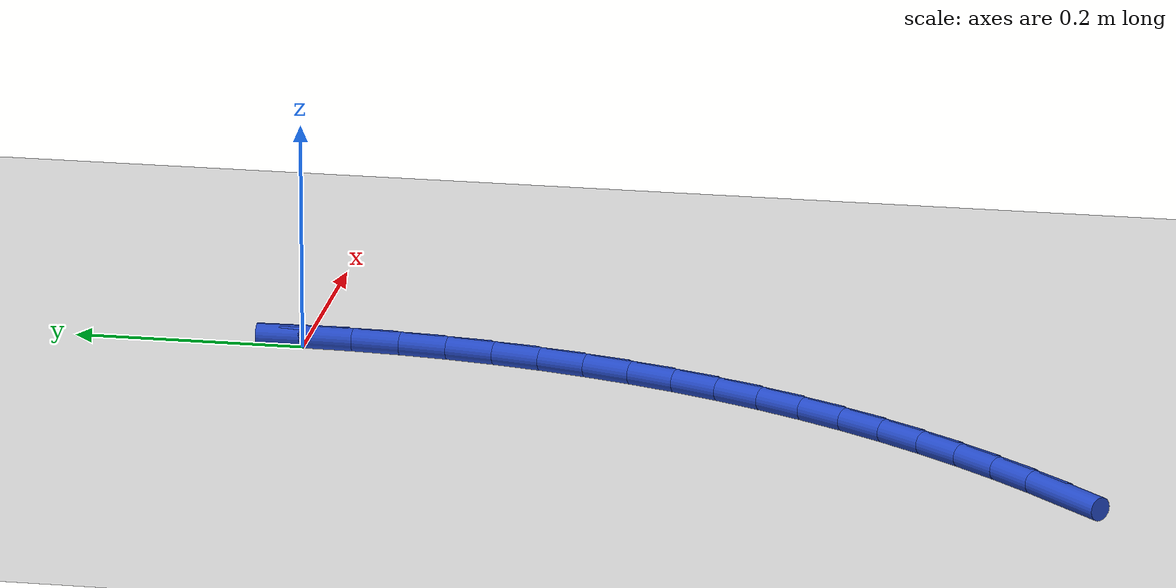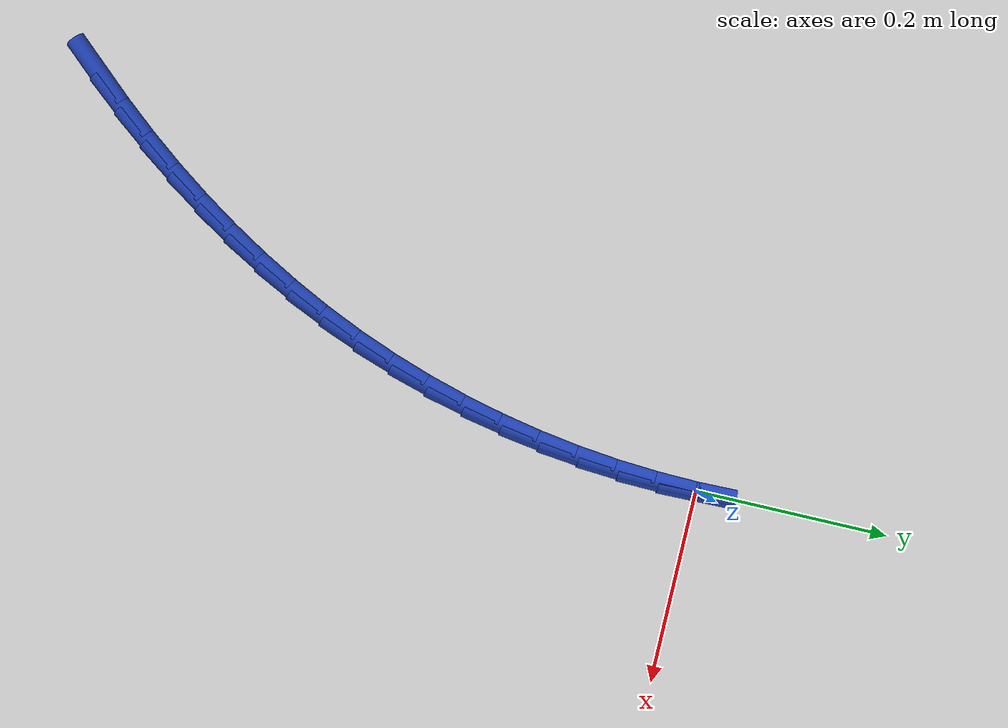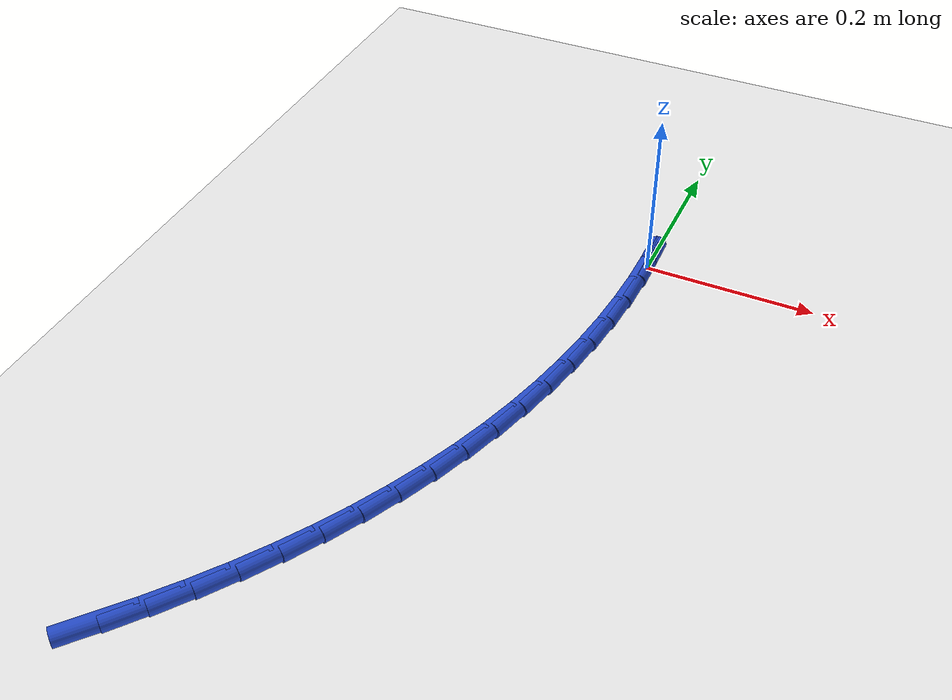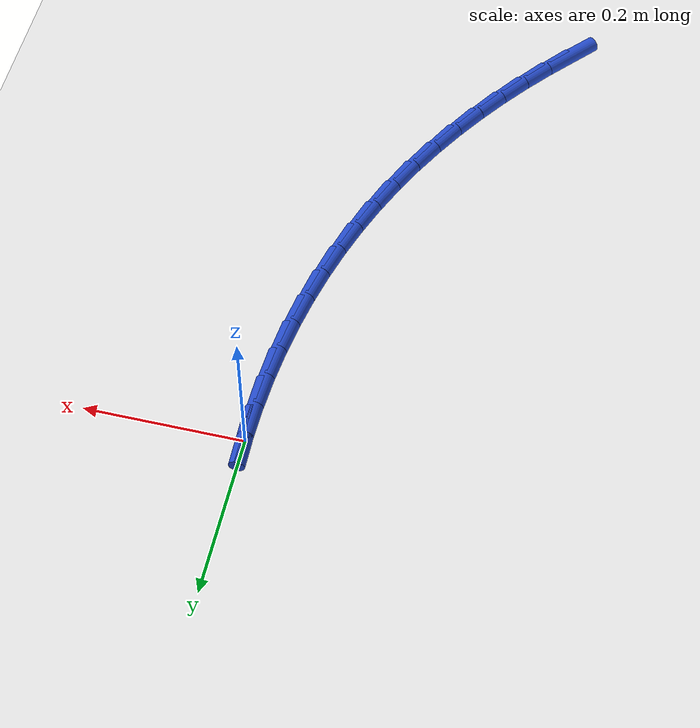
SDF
<sdf version="1.6">
 <world name="default">
  <model name="ground_plane">
   <static>1</static>
   <link name="link">
    <collision name="collision">
     <geometry><plane><normal>0 0 1</normal><size>100 100</size></plane></geometry>
     <surface><friction><ode><mu>100</mu><mu2>50</mu2></ode></friction></surface>
    </collision>
    <visual name="visual">
     <cast_shadows>0</cast_shadows>
     <geometry><plane><normal>0 0 1</normal><size>100 100</size></plane></geometry>
     <material>
      <script><uri>file://media/materials/scripts/gazebo.material</uri><name>Gazebo/WhiteGlow</name></script>
     </material>
    </visual>
   </link>
  </model>
  <model name="line">
   <link name="link_0">
    <pose>-3.469446951953614e-18 -2.7755575615628914e-17 0.01 0 1.57 -1.5496947018431078</pose>
    <collision name="collision">
     <geometry><cylinder><radius>0.01</radius><length>0.08</length></cylinder></geometry>
    </collision>
    <visual name="visual">
     <material>
      <script><name>Gazebo/Blue</name><uri>file://media/materials/scripts/gazebo.material</uri></script>
     </material>
     <geometry><cylinder><radius>0.01</radius><length>0.08</length></cylinder></geometry>
    </visual>
   </link>
   <link name="link_142">
    <pose>-0.2753165179077198 -0.6884397845374995 0.01 0 1.57 0.8447152300504847</pose>
    <collision name="collision">
     <geometry><cylinder><radius>0.01</radius><length>0.08</length></cylinder></geometry>
    </collision>
    <visual name="visual">
     <material>
      <script><name>Gazebo/Blue</name><uri>file://media/materials/scripts/gazebo.material</uri></script>
     </material>
     <geometry><cylinder><radius>0.01</radius><length>0.08</length></cylinder></geometry>
    </visual>
   </link>
   <link name="link_143">
    <pose>-0.24743370142942298 -0.6570361386899152 0.01 0 1.57 0.8814542090587297</pose>
    <collision name="collision">
     <geometry><cylinder><radius>0.01</radius><length>0.08</length></cylinder></geometry>
    </collision>
    <visual name="visual">
     <material>
      <script><name>Gazebo/Blue</name><uri>file://media/materials/scripts/gazebo.material</uri></script>
     </material>
     <geometry><cylinder><radius>0.01</radius><length>0.08</length></cylinder></geometry>
    </visual>
   </link>
   <link name="link_144">
    <pose>-0.22065458951127348 -0.6245463123103422 0.01 0 1.57 0.9188535657262638</pose>
    <collision name="collision">
     <geometry><cylinder><radius>0.01</radius><length>0.08</length></cylinder></geometry>
    </collision>
    <visual name="visual">
     <material>
      <script><name>Gazebo/Blue</name><uri>file://media/materials/scripts/gazebo.material</uri></script>
     </material>
     <geometry><cylinder><radius>0.01</radius><length>0.08</length></cylinder></geometry>
    </visual>
   </link>
   <link name="link_145">
    <pose>-0.1950636221755799 -0.5910184408496193 0.01 0 1.57 0.9570448768048466</pose>
    <collision name="collision">
     <geometry><cylinder><radius>0.01</radius><length>0.08</length></cylinder></geometry>
    </collision>
    <visual name="visual">
     <material>
      <script><name>Gazebo/Blue</name><uri>file://media/materials/scripts/gazebo.material</uri></script>
     </material>
     <geometry><cylinder><radius>0.01</radius><length>0.08</length></cylinder></geometry>
    </visual>
   </link>
   <link name="link_146">
    <pose>-0.1707452394446502 -0.5565006597585852 0.01 0 1.57 0.9961548306998457</pose>
    <collision name="collision">
     <geometry><cylinder><radius>0.01</radius><length>0.08</length></cylinder></geometry>
    </collision>
    <visual name="visual">
     <material>
      <script><name>Gazebo/Blue</name><uri>file://media/materials/scripts/gazebo.material</uri></script>
     </material>
     <geometry><cylinder><radius>0.01</radius><length>0.08</length></cylinder></geometry>
    </visual>
   </link>
   <link name="link_147">
    <pose>-0.14778388134079376 -0.5210411044880797 0.01 0 1.57 1.0363043359912059</pose>
    <collision name="collision">
     <geometry><cylinder><radius>0.01</radius><length>0.08</length></cylinder></geometry>
    </collision>
    <visual name="visual">
     <material>
      <script><name>Gazebo/Blue</name><uri>file://media/materials/scripts/gazebo.material</uri></script>
     </material>
     <geometry><cylinder><radius>0.01</radius><length>0.08</length></cylinder></geometry>
    </visual>
   </link>
   <link name="link_148">
    <pose>-0.12626398788631857 -0.4846879104889415 0.01 0 1.57 1.0776071565027139</pose>
    <collision name="collision">
     <geometry><cylinder><radius>0.01</radius><length>0.08</length></cylinder></geometry>
    </collision>
    <visual name="visual">
     <material>
      <script><name>Gazebo/Blue</name><uri>file://media/materials/scripts/gazebo.material</uri></script>
     </material>
     <geometry><cylinder><radius>0.01</radius><length>0.08</length></cylinder></geometry>
    </visual>
   </link>
   <link name="link_149">
    <pose>-0.106269999103533 -0.4474892132120091 0.01 0 1.57 1.120168028181629</pose>
    <collision name="collision">
     <geometry><cylinder><radius>0.01</radius><length>0.08</length></cylinder></geometry>
    </collision>
    <visual name="visual">
     <material>
      <script><name>Gazebo/Blue</name><uri>file://media/materials/scripts/gazebo.material</uri></script>
     </material>
     <geometry><cylinder><radius>0.01</radius><length>0.08</length></cylinder></geometry>
    </visual>
   </link>
   <link name="link_150">
    <pose>-0.0878863550147456 -0.40949314810812154 0.01 0 1.57 1.1640703088656112</pose>
    <collision name="collision">
     <geometry><cylinder><radius>0.01</radius><length>0.08</length></cylinder></geometry>
    </collision>
    <visual name="visual">
     <material>
      <script><name>Gazebo/Blue</name><uri>file://media/materials/scripts/gazebo.material</uri></script>
     </material>
     <geometry><cylinder><radius>0.01</radius><length>0.08</length></cylinder></geometry>
    </visual>
   </link>
   <link name="link_151">
    <pose>-0.0711970973265462 -0.37074798343708903 0.01 0 1.57 1.2086595059153042</pose>
    <collision name="collision">
     <geometry><cylinder><radius>0.01</radius><length>0.08</length></cylinder></geometry>
    </collision>
    <visual name="visual">
     <material>
      <script><name>Gazebo/Blue</name><uri>file://media/materials/scripts/gazebo.material</uri></script>
     </material>
     <geometry><cylinder><radius>0.01</radius><length>0.08</length></cylinder></geometry>
    </visual>
   </link>
   <link name="link_152">
    <pose>-0.05625691150780473 -0.3313117756030772 0.01 0 1.57 1.25277091820672</pose>
    <collision name="collision">
     <geometry><cylinder><radius>0.01</radius><length>0.08</length></cylinder></geometry>
    </collision>
    <visual name="visual">
     <material>
      <script><name>Gazebo/Blue</name><uri>file://media/materials/scripts/gazebo.material</uri></script>
     </material>
     <geometry><cylinder><radius>0.01</radius><length>0.08</length></cylinder></geometry>
    </visual>
   </link>
   <link name="link_153">
    <pose>-0.04307153008905585 -0.29125890321173553 0.01 0 1.57 1.296342779261994</pose>
    <collision name="collision">
     <geometry><cylinder><radius>0.01</radius><length>0.08</length></cylinder></geometry>
    </collision>
    <visual name="visual">
     <material>
      <script><name>Gazebo/Blue</name><uri>file://media/materials/scripts/gazebo.material</uri></script>
     </material>
     <geometry><cylinder><radius>0.01</radius><length>0.08</length></cylinder></geometry>
    </visual>
   </link>
   <link name="link_154">
    <pose>-0.03164204374461377 -0.25066529258607456 0.01 0 1.57 1.339435774280367</pose>
    <collision name="collision">
     <geometry><cylinder><radius>0.01</radius><length>0.08</length></cylinder></geometry>
    </collision>
    <visual name="visual">
     <material>
      <script><name>Gazebo/Blue</name><uri>file://media/materials/scripts/gazebo.material</uri></script>
     </material>
     <geometry><cylinder><radius>0.01</radius><length>0.08</length></cylinder></geometry>
    </visual>
   </link>
   <link name="link_155">
    <pose>-0.021969543148792715 -0.20960687004910517 0.01 0 1.57 1.382116227659179</pose>
    <collision name="collision">
     <geometry><cylinder><radius>0.01</radius><length>0.08</length></cylinder></geometry>
    </collision>
    <visual name="visual">
     <material>
      <script><name>Gazebo/Blue</name><uri>file://media/materials/scripts/gazebo.material</uri></script>
     </material>
     <geometry><cylinder><radius>0.01</radius><length>0.08</length></cylinder></geometry>
    </visual>
   </link>
   <link name="link_156">
    <pose>-0.014055118975906767 -0.16815956192383696 0.01 0 1.57 1.424454967160196</pose>
    <collision name="collision">
     <geometry><cylinder><radius>0.01</radius><length>0.08</length></cylinder></geometry>
    </collision>
    <visual name="visual">
     <material>
      <script><name>Gazebo/Blue</name><uri>file://media/materials/scripts/gazebo.material</uri></script>
     </material>
     <geometry><cylinder><radius>0.01</radius><length>0.08</length></cylinder></geometry>
    </visual>
   </link>
   <link name="link_157">
    <pose>-0.007899861900270396 -0.12639929453328222 0.01 0 1.57 1.466526293156949</pose>
    <collision name="collision">
     <geometry><cylinder><radius>0.01</radius><length>0.08</length></cylinder></geometry>
    </collision>
    <visual name="visual">
     <material>
      <script><name>Gazebo/Blue</name><uri>file://media/materials/scripts/gazebo.material</uri></script>
     </material>
     <geometry><cylinder><radius>0.01</radius><length>0.08</length></cylinder></geometry>
    </visual>
   </link>
   <link name="link_158">
    <pose>-0.0035048625961976807 -0.08440199420045072 0.01 0 1.57 1.5084070415493531</pose>
    <collision name="collision">
     <geometry><cylinder><radius>0.01</radius><length>0.08</length></cylinder></geometry>
    </collision>
    <visual name="visual">
     <material>
      <script><name>Gazebo/Blue</name><uri>file://media/materials/scripts/gazebo.material</uri></script>
     </material>
     <geometry><cylinder><radius>0.01</radius><length>0.08</length></cylinder></geometry>
    </visual>
   </link>
   <link name="link_159">
    <pose>-0.0008712117380028136 -0.04224358724835313 0.01 0 1.57 1.5501757235553313</pose>
    <collision name="collision">
     <geometry><cylinder><radius>0.01</radius><length>0.08</length></cylinder></geometry>
    </collision>
    <visual name="visual">
     <material>
      <script><name>Gazebo/Blue</name><uri>file://media/materials/scripts/gazebo.material</uri></script>
     </material>
     <geometry><cylinder><radius>0.01</radius><length>0.08</length></cylinder></geometry>
    </visual>
   </link>
   <link name="link_160">
    <pose>-1.0408340855860843e-17 -5.551115123125783e-17 0.01 0 1.57 -1.549680931699937</pose>
    <collision name="collision">
     <geometry><cylinder><radius>0.01</radius><length>0.08</length></cylinder></geometry>
    </collision>
    <visual name="visual">
     <material>
      <script><name>Gazebo/Blue</name><uri>file://media/materials/scripts/gazebo.material</uri></script>
     </material>
     <geometry><cylinder><radius>0.01</radius><length>0.08</length></cylinder></geometry>
    </visual>
   </link>
  </model>
 </world>
</sdf>
